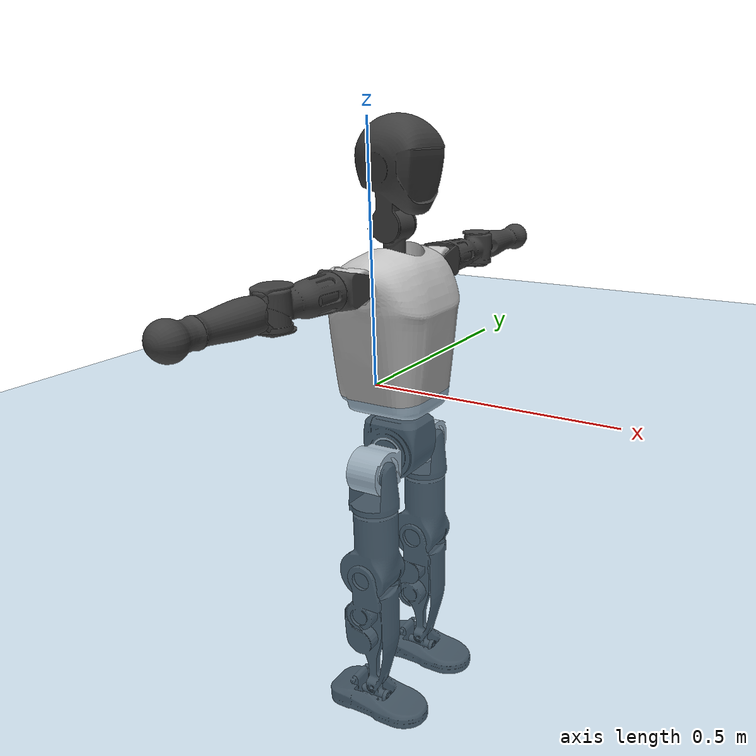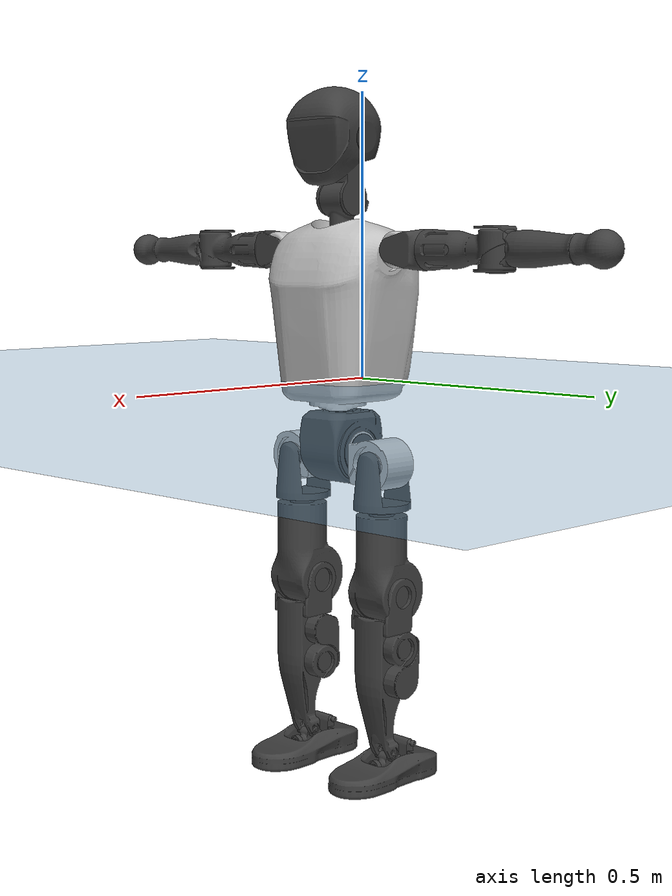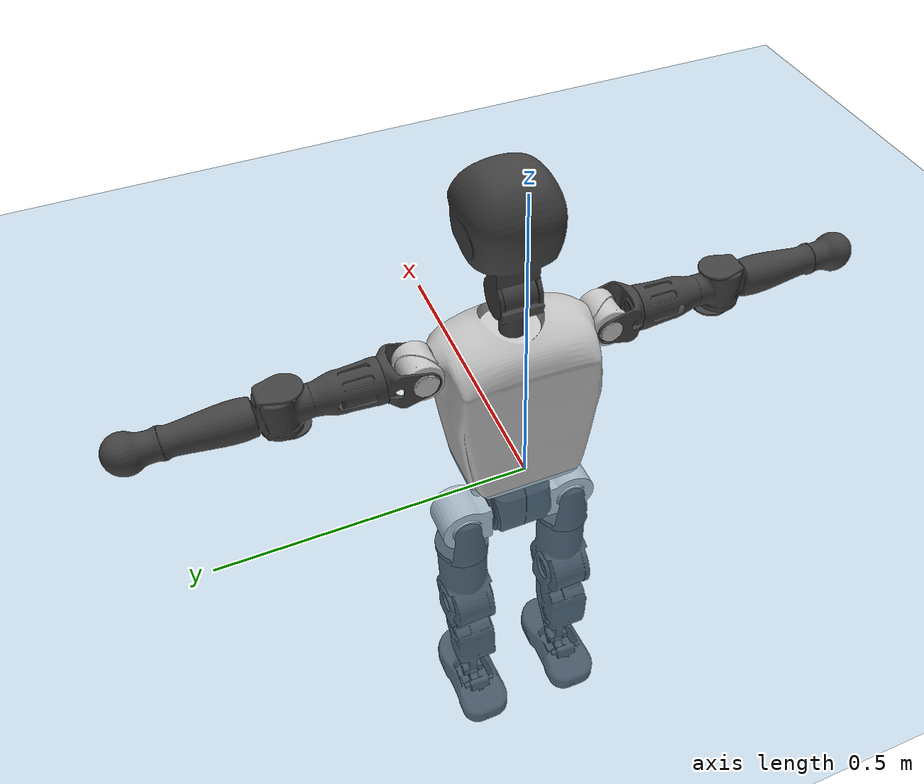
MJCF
<mujoco model="T1">
  <compiler angle="radian" assetdir="assets" balanceinertia="true" inertiafromgeom="false"/>

  <option timestep="0.005" density="1.2" viscosity="2e-05"/>

  <size nkey="1"/>

  <visual>
    <quality shadowsize="8192"/>
    <map shadowclip="0.5"/>
  </visual>

  <default>
    <default class="/">
      <joint armature="0.01" damping="0.01" frictionloss="0.1"/>
      <geom contype="0" conaffinity="0" group="1" solref="-1000 -80"/>
      <site size="0.01 0.005 0.005" group="5"/>
      <general forcelimited="true" biastype="affine" gainprm="25" biasprm="0 -25 -0.6"/>
      <default class="t1">
        <geom rgba="0.25 0.25 0.25 1"/>
        <default class="visual">
          <geom type="mesh" group="2"/>
        </default>
        <default class="collision">
          <geom group="3"/>
        </default>
        <default class="foot">
          <geom size="0.1115 0.05 0.015" type="box" condim="6" group="4" priority="1" solimp="0.015 1 0.015"/>
        </default>
        <default class="reward_collision_sphere">
          <geom group="5" rgba="1 0 0 1"/>
        </default>
      </default>
    </default>
  </default>

  <asset>
    <texture type="skybox" colorspace="auto" name="//unnamed_texture_0" builtin="gradient" rgb1="0.95 0.95 0.95" rgb2="0.95 0.95 0.95" width="100" height="600"/>
    <texture type="2d" colorspace="auto" name="texplane" builtin="checker" rgb1="0.345 0.575 0.748" rgb2="0.345 0.575 0.748" markrgb="1 1 1" width="512" height="512"/>
    <material name="MatPlane" class="/" texture="texplane" texuniform="true" texrepeat="2 2" specular="0.9"/>
    <mesh name="Trunk" class="/" file="Trunk.stl"/>
    <mesh name="H1" class="/" file="H1.stl"/>
    <mesh name="H2" class="/" file="H2.stl"/>
    <mesh name="AL1" class="/" file="AL1.stl"/>
    <mesh name="AL2" class="/" file="AL2.stl"/>
    <mesh name="AL3" class="/" file="AL3.stl"/>
    <mesh name="left_hand_link" class="/" file="left_hand_link.stl"/>
    <mesh name="AR1" class="/" file="AR1.stl"/>
    <mesh name="AR2" class="/" file="AR2.stl"/>
    <mesh name="AR3" class="/" file="AR3.stl"/>
    <mesh name="right_hand_link" class="/" file="right_hand_link.stl"/>
    <mesh name="Waist" class="/" file="Waist.stl"/>
    <mesh name="Hip_Pitch_Left" class="/" file="Hip_Pitch_Left.stl"/>
    <mesh name="Hip_Roll_Left" class="/" file="Hip_Roll_Left.stl"/>
    <mesh name="Hip_Yaw_Left" class="/" file="Hip_Yaw_Left.stl"/>
    <mesh name="Shank_Left" class="/" file="Shank_Left.stl"/>
    <mesh name="Ankle_Cross_Left" class="/" file="Ankle_Cross_Left.stl"/>
    <mesh name="left_foot_link" class="/" file="left_foot_link.stl"/>
    <mesh name="Hip_Pitch_Right" class="/" file="Hip_Pitch_Right.stl"/>
    <mesh name="Hip_Roll_Right" class="/" file="Hip_Roll_Right.stl"/>
    <mesh name="Hip_Yaw_Right" class="/" file="Hip_Yaw_Right.stl"/>
    <mesh name="Shank_Right" class="/" file="Shank_Right.stl"/>
    <mesh name="Ankle_Cross_Right" class="/" file="Ankle_Cross_Right.stl"/>
    <mesh name="right_foot_link" class="/" file="right_foot_link.stl"/>
  </asset>

  <worldbody>
    <geom name="floor" class="/" size="100 100 0.125" type="plane" group="0" material="MatPlane"/>
    <light name="toplight_shadow" class="/" pos="0 0 5" dir="0.0990148 0.0990148 -0.990148" type="directional" ambient="0.04 0.04 0.04" diffuse="0.55 0.55 0.55" specular="0.12 0.12 0.12"/>
    <light name="toplight_fill" class="/" pos="0 0 5" dir="0.0990148 0.0990148 -0.990148" type="directional" castshadow="false" ambient="0.04 0.04 0.04" diffuse="0.3 0.3 0.3" specular="0.08 0.08 0.08"/>
    <body name="trunk" childclass="t1" pos="-0.000809555 -1.48656e-05 2.75857e-05" quat="1 0.000212966 -9.29567e-05 -8.95248e-05">
      <inertial pos="0.0470747 -0.000619556 0.110318" quat="0.999964 0.0007975 -0.00846463 -0.000761093" mass="9.63105" diaginertia="0.0436928 0.0491684 0.0687166"/>
      <joint name="//unnamed_joint_0" type="free" armature="0" damping="0" frictionloss="0"/>
      <geom name="//unnamed_geom_1" class="visual" rgba="0.76 0.76 0.76 1" mesh="Trunk"/>
      <geom name="//unnamed_geom_2" class="collision" size="0.0704563 0.0939417 0.140913" pos="0.0517503 0 0.124957" type="box"/>
      <geom name="//unnamed_geom_3" class="reward_collision_sphere" size="0.108033" pos="0.0517503 0 0.104131"/>
      <geom name="//unnamed_geom_4" class="reward_collision_sphere" size="0.0140913" pos="0.0517503 0.0777274 0"/>
      <geom name="//unnamed_geom_5" class="reward_collision_sphere" size="0.0140913" pos="0.0517503 -0.0777274 0"/>
      <geom name="//unnamed_geom_6" class="reward_collision_sphere" size="0.0140913" pos="0.0517503 0.0978451 0.187435"/>
      <geom name="//unnamed_geom_7" class="reward_collision_sphere" size="0.0140913" pos="0.0517503 -0.0978451 0.187435"/>
      <site name="imu" pos="-0.00300592 0.00345098 -0.00301071" size="0.00939417"/>
      <camera name="track" pos="0 -1.82888 0" quat="0.707107 0.707107 0 0" mode="trackcom"/>
      <camera name="ego_camera" pos="0.105226 0 0.437349" quat="-0.5 -0.5 0.5 0.5"/>
      <body name="H1" pos="0.052076 -0.00107649 0.25163" quat="1 -9.71967e-06 6.51565e-06 -2.95866e-06">
        <inertial pos="-0.000421966 -0.00130217 0.0606466" quat="0.762955 -0.010465 0.000459298 0.646367" mass="0.366986" diaginertia="0.000114979 0.000141434 0.000183556"/>
        <joint name="AAHead_yaw" pos="0 0 0" axis="0.00105605 0.00198551 0.999997" range="-1.56461 1.56572" armature="0.00946725" damping="0.0108256" frictionloss="0.0896292"/>
        <geom name="//unnamed_geom_8" class="visual" mesh="H1"/>
        <body name="H2" pos="-0.000135694 -0.000123112 0.0640886" quat="1 -9.34482e-05 0.000115122 0.000115247">
          <inertial pos="0.00580369 -0.000294948 0.102689" quat="0.988593 0.104314 -0.074174 -0.079374" mass="0.521074" diaginertia="0.000977751 0.00123105 0.00208564"/>
          <joint name="Head_pitch" pos="0 0 0" axis="0.000398926 -1 4.07719e-05" range="-1.21791 0.349373" armature="0.00904135" damping="0.00530615" frictionloss="0.0936726"/>
          <geom name="//unnamed_geom_9" class="visual" mesh="H2"/>
          <geom name="//unnamed_geom_10" class="collision" size="0.0751534" pos="0.00862505 0 0.114544"/>
          <geom name="//unnamed_geom_11" class="reward_collision_sphere" size="0.0845476" pos="0.0172501 0 0.104131"/>
        </body>
      </body>
      <body name="AL1" pos="0.0495058 0.0988129 0.227177" quat="1 -1.3301e-06 0.000440542 -1.74953e-07">
        <inertial pos="-0.00161898 0.0414409 0.000332499" quat="0.504806 0.49473 -0.504402 0.495976" mass="0.429706" diaginertia="0.000637816 0.000808174 0.000355001"/>
        <joint name="Left_Shoulder_Pitch" pos="0 0 0" axis="0.00474471 0.999984 0.00313103" range="-3.32431 1.21739" armature="0.00900811" damping="0.00926937" frictionloss="0.0973692"/>
        <geom name="//unnamed_geom_12" class="visual" rgba="0.76 0.76 0.76 1" mesh="AL1"/>
        <body name="AL2" pos="0.0014298 0.0439945 -0.000885366" quat="1 -0.000262889 -1.72198e-05 1.81317e-05">
          <inertial pos="0.00336827 0.0343975 -0.00122383" quat="0.487931 0.51177 -0.48804 0.511695" mass="0.134139" diaginertia="0.000191633 0.00022494 0.000219933"/>
          <joint name="Left_Shoulder_Roll" pos="0 0 0" axis="-1 0.000463726 8.11718e-05" stiffness="0.000314044" range="-1.58809 1.73814" armature="0.00944392" damping="0.010344" frictionloss="0.0927696"/>
          <geom name="//unnamed_geom_13" class="visual" mesh="AL2"/>
          <body name="AL3" pos="0.00156356 0.0557969 0.000474688" quat="1 -0.000339093 0.000208161 1.72829e-06">
            <inertial pos="-0.000402066 0.0784308 -0.000638786" quat="0.70696 0.707252 -0.000182883 0.00141028" mass="0.841514" diaginertia="0.00613551 0.00819468 0.000760937"/>
            <joint name="Left_Elbow_Pitch" pos="0 0 0" axis="0.00104689 -0.999997 0.00210559" stiffness="0.00216523" range="-2.27384 2.26581" armature="0.00943868" damping="0.0134289" frictionloss="0.0945977"/>
            <geom name="//unnamed_geom_14" class="visual" mesh="AL3"/>
            <geom name="//unnamed_geom_15" class="collision" size="0.0281825 0.0704563" pos="0 0.045722 0" quat="0.707105 0.707108 0 0" type="cylinder"/>
            <geom name="//unnamed_geom_16" class="reward_collision_sphere" size="0.033819"/>
            <body name="left_hand_link" pos="-0.000405 0.134694 0.00102928" quat="1 -8.50077e-05 0.000150529 -0.000104239">
              <inertial pos="0.00107705 0.100402 -7.11794e-05" quat="0.708743 0.705465 0.00159386 0.000211771" mass="0.273081" diaginertia="0.00389718 0.00518264 0.000261165"/>
              <joint name="Left_Elbow_Yaw" pos="0 0 0" axis="-0.00146166 0.00672103 0.999976" range="-2.46461 0.0209041" armature="0.00917447" damping="0.00770291" frictionloss="0.0921789"/>
              <geom name="//unnamed_geom_17" class="visual" mesh="left_hand_link"/>
              <geom name="//unnamed_geom_18" class="collision" size="0.0281825 0.082199" pos="0 0.118877 0" quat="0.707105 0.707108 0 0" type="cylinder"/>
              <geom name="//unnamed_geom_19" class="reward_collision_sphere" size="0.0469709"/>
              <geom name="//unnamed_geom_20" class="reward_collision_sphere" size="0.0328796" pos="0 0.100588 0"/>
              <geom name="//unnamed_geom_21" class="reward_collision_sphere" size="0.0328796" pos="0 0.196605 0"/>
            </body>
          </body>
        </body>
      </body>
      <body name="AR1" pos="0.0491073 -0.09643 0.227867" quat="1 0.000215636 0.000204333 0.000239721">
        <inertial pos="-0.00185839 -0.0413055 2.51343e-05" quat="0.50388 0.495895 -0.504274 0.495883" mass="0.440003" diaginertia="0.000656127 0.00082667 0.000360315"/>
        <joint name="Right_Shoulder_Pitch" pos="0 0 0" axis="-0.00026102 -0.999999 -0.00157309" range="-1.23118 3.30705" armature="0.00905748" damping="0.00298068" frictionloss="0.0981998"/>
        <geom name="//unnamed_geom_22" class="visual" rgba="0.76 0.76 0.76 1" mesh="AR1"/>
        <body name="AR2" pos="-0.000871709 -0.0433733 -0.000220307" quat="1 2.87152e-05 4.90618e-05 4.60923e-06">
          <inertial pos="0.00412659 -0.0351534 -0.000197491" quat="0.511718 0.487986 -0.511664 0.488072" mass="0.131449" diaginertia="0.000189409 0.000216547 0.000212375"/>
          <joint name="Right_Shoulder_Roll" pos="0 0 0" axis="-0.999997 -0.0020178 0.00148788" range="-1.72032 1.56311" armature="0.00905871" damping="0.0107364" frictionloss="0.0953985"/>
          <geom name="//unnamed_geom_23" class="visual" mesh="AR2"/>
          <body name="AR3" pos="-0.000851022 -0.0564127 -0.000655965" quat="1 2.87884e-06 -5.94001e-05 -5.36744e-05">
            <inertial pos="-0.000936942 -0.0784615 0.000158548" quat="0.708685 0.705512 0.00266263 -0.00345972" mass="0.845184" diaginertia="0.00610371 0.00819525 0.000766595"/>
            <joint name="Right_Elbow_Pitch" pos="0 0 0" axis="-0.00498438 0.999987 -0.000875656" range="-2.26984 2.28528" armature="0.00932879" damping="0.00875351" frictionloss="0.091434"/>
            <geom name="//unnamed_geom_24" class="visual" mesh="AR3"/>
            <geom name="//unnamed_geom_25" class="collision" size="0.0281825 0.0704563" pos="0 -0.045722 0" quat="0.707105 0.707108 0 0" type="cylinder"/>
            <geom name="//unnamed_geom_26" class="reward_collision_sphere" size="0.033819"/>
            <body name="right_hand_link" pos="-0.00112028 -0.135288 -0.000117545" quat="1 4.03428e-05 -9.10661e-05 2.48823e-05">
              <inertial pos="-0.000791049 -0.100622 0.00106408" quat="0.706264 0.707948 -2.23228e-05 -0.000106491" mass="0.269639" diaginertia="0.00389356 0.00515887 0.000264332"/>
              <joint name="Right_Elbow_Yaw" pos="0 0 0" axis="-0.00266482 0.00160719 0.999995" range="-0.0199195 2.44253" armature="0.00942827" damping="0.013108" frictionloss="0.092527"/>
              <geom name="//unnamed_geom_27" class="visual" mesh="right_hand_link"/>
              <geom name="//unnamed_geom_28" class="collision" size="0.0281825 0.082199" pos="0 -0.118877 0" quat="0.707105 0.707108 0 0" type="cylinder"/>
              <geom name="//unnamed_geom_29" class="reward_collision_sphere" size="0.0469709"/>
              <geom name="//unnamed_geom_30" class="reward_collision_sphere" size="0.0328796" pos="0 -0.100588 0"/>
              <geom name="//unnamed_geom_31" class="reward_collision_sphere" size="0.0328796" pos="0 -0.196605 0"/>
            </body>
          </body>
        </body>
      </body>
      <body name="Waist" pos="0.0543898 -0.00065121 -0.120053" quat="1 -0.000151299 -7.37647e-05 -4.4227e-05">
        <inertial pos="0.00190598 -0.000563781 0.00791908" quat="0.98284 -0.000509599 -0.184448 0.00202958" mass="2.16348" diaginertia="0.00260381 0.00341402 0.0059043"/>
        <joint name="Waist" pos="0 0 0" axis="-0.00153296 0.00127583 0.999998" range="-1.55388 1.58915" armature="0.00948122" damping="0.0142233" frictionloss="0.0926812"/>
        <geom name="//unnamed_geom_32" class="visual" mesh="Waist"/>
        <body name="Hip_Pitch_Left" pos="-0.000295999 0.0973 0.000305823" quat="1 -2.14675e-05 -1.90076e-05 -9.36604e-05">
          <inertial pos="0.000435774 -0.0066727 -0.0192415" quat="0.975295 0.220189 0.0169708 0.005266" mass="0.847134" diaginertia="0.000873602 0.000931213 0.00154656"/>
          <joint name="Left_Hip_Pitch" pos="0 0 0" axis="0.00179949 0.999998 -0.000960553" range="-1.79443 1.57462" armature="0.00908867" damping="0.00976933" frictionloss="0.0943389"/>
          <geom name="//unnamed_geom_33" class="visual" rgba="0.76 0.76 0.76 1" mesh="Hip_Pitch_Left"/>
          <body name="Hip_Roll_Left" pos="0.000723717 0.000467483 -0.0207215" quat="1 -0.000274282 0.000218773 0.000252882">
            <inertial pos="0.000165926 -0.00039034 -0.0558461" quat="0.706691 -0.00492382 -0.00509783 0.707487" mass="0.317153" diaginertia="0.000812872 0.000958903 0.000627604"/>
            <joint name="Left_Hip_Roll" pos="0 0 0" axis="-0.999997 0.00141774 -0.00210161" range="-1.55643 0.19652" armature="0.00979758" damping="0.0120743" frictionloss="0.0967857"/>
            <geom name="//unnamed_geom_34" class="visual" mesh="Hip_Roll_Left"/>
            <geom name="//unnamed_geom_35" class="reward_collision_sphere" size="0.051668"/>
            <body name="Hip_Yaw_Left" pos="-4.89957e-05 0.000820124 -0.0865076" quat="1 -3.82171e-05 0.000103539 -8.45521e-05">
              <inertial pos="-0.0064304 -0.000379062 -0.0928158" quat="0.696565 -0.0349846 -0.032028 0.715924" mass="1.79132" diaginertia="0.0122942 0.0160256 0.00314696"/>
              <joint name="Left_Hip_Yaw" pos="0 0 0" axis="-5.27622e-05 -3.04529e-05 -1" range="-0.98916 1.00797" armature="0.00936187" damping="0.00880414" frictionloss="0.0928415"/>
              <geom name="//unnamed_geom_36" class="visual" mesh="Hip_Yaw_Left"/>
              <geom name="//unnamed_geom_37" class="collision" size="0.0469709 0.0751534" type="cylinder"/>
              <body name="Shank_Left" pos="-0.0108082 -3.64068e-05 -0.139197" quat="1 -7.72343e-05 0.000146594 2.89196e-06">
                <inertial pos="-0.00595438 0.000348046 -0.129642" quat="0.997452 0.0020298 -0.0284202 0.0654111" mass="1.44602" diaginertia="0.016502 0.0223438 0.0022469"/>
                <joint name="Left_Knee_Pitch" pos="0 0 0" axis="0.00339043 0.999988 0.00351176" stiffness="0.00130832" range="-0.000561838 2.32924" armature="0.00970522" damping="0.0111451" frictionloss="0.0970373"/>
                <geom name="//unnamed_geom_38" class="visual" mesh="Shank_Left"/>
                <geom name="//unnamed_geom_39" class="collision" size="0.0469709 0.0704563" pos="0 0 -0.124957" type="cylinder"/>
                <geom name="//unnamed_geom_40" class="reward_collision_sphere" size="0.0610621"/>
                <body name="Ankle_Cross_Left" pos="-0.0007266 0.000136709 -0.291968" quat="1 1.39822e-05 -4.8729e-06 -4.99896e-06">
                  <inertial pos="-0.00286503 0.000468997 -0.00849651" quat="0.442736 0.550959 0.550696 0.444031" mass="0.0597741" diaginertia="1.35445e-05 1.61886e-05 1.38045e-05"/>
                  <joint name="Left_Ankle_Pitch" pos="0 0 0" axis="0.00087734 0.999993 0.0035814" range="-0.87076 0.363952" armature="0.00979121" damping="0.0106145" frictionloss="0.0976485"/>
                  <geom name="//unnamed_geom_41" class="visual" mesh="Ankle_Cross_Left"/>
                  <body name="left_foot_link" pos="0.000433031 0.000132555 -0.0117427" quat="1 0.00013156 7.48497e-07 4.24903e-05">
                    <inertial pos="-0.000776039 -0.000516163 -0.009446" quat="0.000965168 0.621728 0.00153365 0.783231" mass="0.565848" diaginertia="0.00129563 0.00153386 0.00268655"/>
                    <joint name="Left_Ankle_Roll" pos="0 0 0" axis="-0.999999 -0.000850257 0.000606122" range="-0.460698 0.456937" armature="0.00940625" damping="0.00321196" frictionloss="0.0917506"/>
                    <geom name="//unnamed_geom_42" class="visual" mesh="left_foot_link"/>
                    <geom name="left_foot" class="foot" size="0.102779 0.0462754 0.0147456" pos="0.00862505 0 -0.0156196"/>
                    <geom name="//unnamed_geom_44" class="reward_collision_sphere" size="0.0488497" pos="0.00862505 0 -0.0156196"/>
                    <geom name="//unnamed_geom_45" class="reward_collision_sphere" size="0.0281825" pos="0.081938 -0.0210321 -0.0156196"/>
                    <geom name="//unnamed_geom_46" class="reward_collision_sphere" size="0.0281825" pos="-0.0603754 -0.0210321 -0.0156196"/>
                    <site name="left_foot" class="foot" pos="0.00862505 0 -0.0156196" size="0.00939417"/>
                  </body>
                </body>
              </body>
            </body>
          </body>
        </body>
        <body name="Hip_Pitch_Right" pos="9.39144e-05 -0.097324 0.00092472" quat="1 -0.000133593 -0.000219852 -0.000412426">
          <inertial pos="-4.04087e-05 0.00702521 -0.0185373" quat="0.973476 -0.228281 0.0146415 -0.00424796" mass="0.850095" diaginertia="0.000854254 0.000940788 0.00151446"/>
          <joint name="Right_Hip_Pitch" pos="0 0 0" axis="-0.00154506 -0.999991 0.00392392" range="-1.59675 1.81348" armature="0.00928813" damping="0.00718499" frictionloss="0.0915837"/>
          <geom name="//unnamed_geom_47" class="visual" rgba="0.76 0.76 0.76 1" mesh="Hip_Pitch_Right"/>
          <body name="Hip_Roll_Right" pos="0.000924674 -0.000113094 -0.0207872" quat="1 6.19991e-06 4.02515e-05 2.81701e-05">
            <inertial pos="0.00122175 0.000301492 -0.0561941" quat="0.707252 -0.00592574 -0.00613921 0.70691" mass="0.320363" diaginertia="0.000836523 0.000981687 0.000635433"/>
            <joint name="Right_Hip_Roll" pos="0 0 0" axis="-0.99997 0.00683708 -0.00371471" stiffness="0.00356535" range="-0.199569 1.5657" armature="0.00982816" damping="0.00791017" frictionloss="0.0961325"/>
            <geom name="//unnamed_geom_48" class="visual" mesh="Hip_Roll_Right"/>
            <geom name="//unnamed_geom_49" class="reward_collision_sphere" size="0.051668"/>
            <body name="Hip_Yaw_Right" pos="0.000164081 -0.000633768 -0.0854617" quat="1 3.00629e-06 1.17803e-07 3.04724e-07">
              <inertial pos="-0.00678513 6.64009e-07 -0.0921212" quat="0.714125 -0.0316822 -0.0392037 0.698201" mass="1.79717" diaginertia="0.0122597 0.0163577 0.0031863"/>
              <joint name="Right_Hip_Yaw" pos="0 0 0" axis="-0.00417667 -0.000267664 -0.999991" range="-0.999005 1.00858" armature="0.00912489" damping="0.00862753" frictionloss="0.0939119"/>
              <geom name="//unnamed_geom_50" class="visual" mesh="Hip_Yaw_Right"/>
              <geom name="//unnamed_geom_51" class="collision" size="0.0469709 0.0751534" type="cylinder"/>
              <body name="Shank_Right" pos="-0.0127915 -0.00137632 -0.14039" quat="1 4.06285e-05 -4.68394e-05 -7.06241e-05">
                <inertial pos="-0.00628561 0.00120185 -0.126773" quat="0.999314 4.77382e-05 -0.0226314 -0.0293302" mass="1.48905" diaginertia="0.0169253 0.0226657 0.00244723"/>
                <joint name="Right_Knee_Pitch" pos="0 0 0" axis="-0.00201232 -0.999998 -0.000970428" range="-2.32251 -0.00658081" armature="0.00939249" damping="0.00724505" frictionloss="0.0976726"/>
                <geom name="//unnamed_geom_52" class="visual" mesh="Shank_Right"/>
                <geom name="//unnamed_geom_53" class="collision" size="0.0469709 0.0704563" pos="0 0 -0.124957" type="cylinder"/>
                <geom name="//unnamed_geom_54" class="reward_collision_sphere" size="0.0610621"/>
                <body name="Ankle_Cross_Right" pos="0.000339156 -0.000104898 -0.292168" quat="1 1.29757e-05 1.85929e-05 1.90002e-05">
                  <inertial pos="-0.00319774 0.000572645 -0.00821685" quat="0.444129 0.548669 0.550942 0.445168" mass="0.0609519" diaginertia="1.39038e-05 1.61793e-05 1.39099e-05"/>
                  <joint name="Right_Ankle_Pitch" pos="0 0 0" axis="-0.00143653 -0.999995 -0.00291948" stiffness="0.00110657" range="-0.368636 0.868659" armature="0.00905813" damping="0.00295281" frictionloss="0.0951562"/>
                  <geom name="//unnamed_geom_55" class="visual" mesh="Ankle_Cross_Right"/>
                  <body name="right_foot_link" pos="-0.000874373 -0.000722157 -0.0122731" quat="1 6.71472e-06 2.87475e-06 -1.71828e-05">
                    <inertial pos="-0.000316969 -0.000466249 -0.00932082" quat="-0.000351874 0.623742 0.00231368 0.781627" mass="0.564789" diaginertia="0.00128741 0.00152016 0.0026875"/>
                    <joint name="Right_Ankle_Roll" pos="0 0 0" axis="-1 -9.12398e-05 0.000196784" range="-0.433039 0.455955" armature="0.0091423" damping="0.00411362" frictionloss="0.0976572"/>
                    <geom name="//unnamed_geom_56" class="visual" mesh="right_foot_link"/>
                    <geom name="right_foot" class="foot" size="0.0968987 0.0441729 0.013891" pos="0.00862505 0 -0.0156196"/>
                    <geom name="//unnamed_geom_58" class="reward_collision_sphere" size="0.0375767"/>
                    <geom name="//unnamed_geom_59" class="reward_collision_sphere" size="0.0281825" pos="0.00862505 0 -0.0156196"/>
                    <geom name="//unnamed_geom_60" class="reward_collision_sphere" size="0.0281825" pos="0.081938 0.0210321 -0.0156196"/>
                    <geom name="//unnamed_geom_61" class="reward_collision_sphere" size="0.0281825" pos="-0.0603754 0.0210321 -0.0156196"/>
                    <site name="right_foot" class="foot" pos="0.00862505 0 -0.0156196" size="0.00939417"/>
                  </body>
                </body>
              </body>
            </body>
          </body>
        </body>
      </body>
    </body>
  </worldbody>

  <contact>
    <pair class="/" geom1="floor" geom2="left_foot" name="//unnamed_contact_0"/>
    <pair class="/" geom1="floor" geom2="right_foot" name="//unnamed_contact_1"/>
  </contact>

  <actuator>
    <general name="AAHead_yaw" class="/" joint="AAHead_yaw" forcerange="-6.40668 6.40668" gainprm="22.757" biasprm="0 -22.757 -0.556883"/>
    <general name="Head_pitch" class="/" joint="Head_pitch" forcerange="-6.68999 6.68999" gainprm="22.757" biasprm="0 -22.757 -0.556883"/>
    <general name="Left_Shoulder_Pitch" class="/" joint="Left_Shoulder_Pitch" forcerange="-16.8118 16.8118" gainprm="22.757" biasprm="0 -22.757 -0.556883"/>
    <general name="Left_Shoulder_Roll" class="/" joint="Left_Shoulder_Roll" forcerange="-17.0164 17.0164" gainprm="22.757" biasprm="0 -22.757 -0.556883"/>
    <general name="Left_Elbow_Pitch" class="/" joint="Left_Elbow_Pitch" forcerange="-16.6164 16.6164" gainprm="22.757" biasprm="0 -22.757 -0.556883"/>
    <general name="Left_Elbow_Yaw" class="/" joint="Left_Elbow_Yaw" forcerange="-16.4445 16.4445" gainprm="22.757" biasprm="0 -22.757 -0.556883"/>
    <general name="Right_Shoulder_Pitch" class="/" joint="Right_Shoulder_Pitch" forcerange="-17.4553 17.4553" gainprm="22.757" biasprm="0 -22.757 -0.556883"/>
    <general name="Right_Shoulder_Roll" class="/" joint="Right_Shoulder_Roll" forcerange="-16.7531 16.7531" gainprm="22.757" biasprm="0 -22.757 -0.556883"/>
    <general name="Right_Elbow_Pitch" class="/" joint="Right_Elbow_Pitch" forcerange="-16.8729 16.8729" gainprm="22.757" biasprm="0 -22.757 -0.556883"/>
    <general name="Right_Elbow_Yaw" class="/" joint="Right_Elbow_Yaw" forcerange="-17.0242 17.0242" gainprm="22.757" biasprm="0 -22.757 -0.556883"/>
    <general name="Waist" class="/" joint="Waist" forcerange="-27.7957 27.7957" gainprm="22.757" biasprm="0 -22.757 -0.556883"/>
    <general name="Left_Hip_Pitch" class="/" joint="Left_Hip_Pitch" forcerange="-42.1045 42.1045" gainprm="22.757" biasprm="0 -22.757 -0.556883"/>
    <general name="Left_Hip_Roll" class="/" joint="Left_Hip_Roll" forcerange="-28.7228 28.7228" gainprm="22.757" biasprm="0 -22.757 -0.556883"/>
    <general name="Left_Hip_Yaw" class="/" joint="Left_Hip_Yaw" forcerange="-28.8072 28.8072" gainprm="22.757" biasprm="0 -22.757 -0.556883"/>
    <general name="Left_Knee_Pitch" class="/" joint="Left_Knee_Pitch" forcerange="-54.4205 54.4205" gainprm="22.757" biasprm="0 -22.757 -0.556883"/>
    <general name="Left_Ankle_Pitch" class="/" joint="Left_Ankle_Pitch" forcerange="-19.4077 19.4077" gainprm="22.757" biasprm="0 -22.757 -0.556883"/>
    <general name="Left_Ankle_Roll" class="/" joint="Left_Ankle_Roll" forcerange="-14.2648 14.2648" gainprm="22.757" biasprm="0 -22.757 -0.556883"/>
    <general name="Right_Hip_Pitch" class="/" joint="Right_Hip_Pitch" forcerange="-42.4967 42.4967" gainprm="22.757" biasprm="0 -22.757 -0.556883"/>
    <general name="Right_Hip_Roll" class="/" joint="Right_Hip_Roll" forcerange="-27.6352 27.6352" gainprm="22.757" biasprm="0 -22.757 -0.556883"/>
    <general name="Right_Hip_Yaw" class="/" joint="Right_Hip_Yaw" forcerange="-28.5089 28.5089" gainprm="22.757" biasprm="0 -22.757 -0.556883"/>
    <general name="Right_Knee_Pitch" class="/" joint="Right_Knee_Pitch" forcerange="-57.1393 57.1393" gainprm="22.757" biasprm="0 -22.757 -0.556883"/>
    <general name="Right_Ankle_Pitch" class="/" joint="Right_Ankle_Pitch" forcerange="-18.7372 18.7372" gainprm="22.757" biasprm="0 -22.757 -0.556883"/>
    <general name="Right_Ankle_Roll" class="/" joint="Right_Ankle_Roll" forcerange="-13.978 13.978" gainprm="22.757" biasprm="0 -22.757 -0.556883"/>
  </actuator>

  <sensor>
    <gyro site="imu" name="imu_angular_velocity"/>
    <velocimeter site="imu" name="imu_linear_velocity"/>
    <framelinvel objtype="site" objname="left_foot" name="left_foot_global_linear_velocity"/>
    <framelinvel objtype="site" objname="right_foot" name="right_foot_global_linear_velocity"/>
  </sensor>

  <keyframe>
    <key name="home" qpos="0 0 0.6385 1 0 0 0 0 0 0 1.4 0 -0.4 0 -1.4 0 0.4 0 -0.4 0 0 0.8 -0.4 0 0.4 0 0 -0.8 0.4 0"/>
  </keyframe>
</mujoco>
